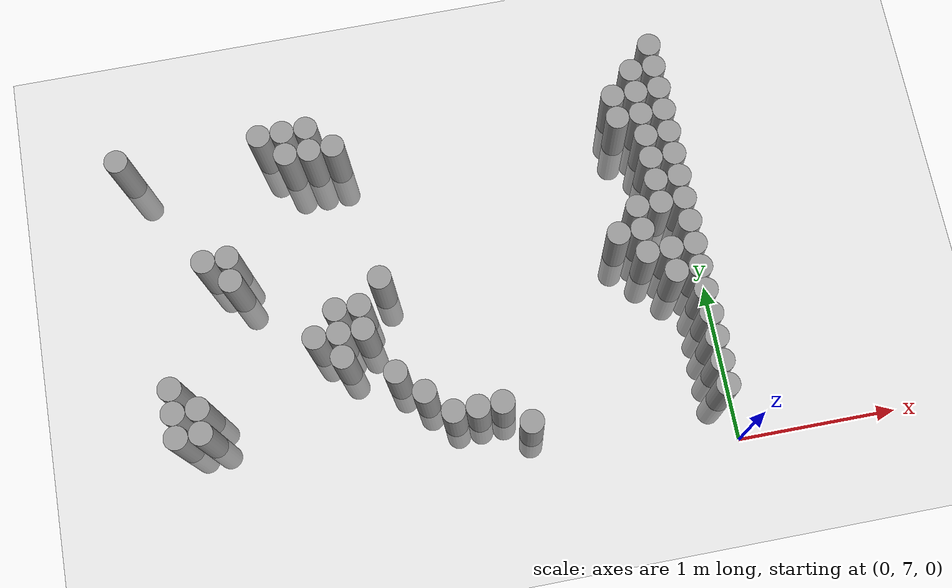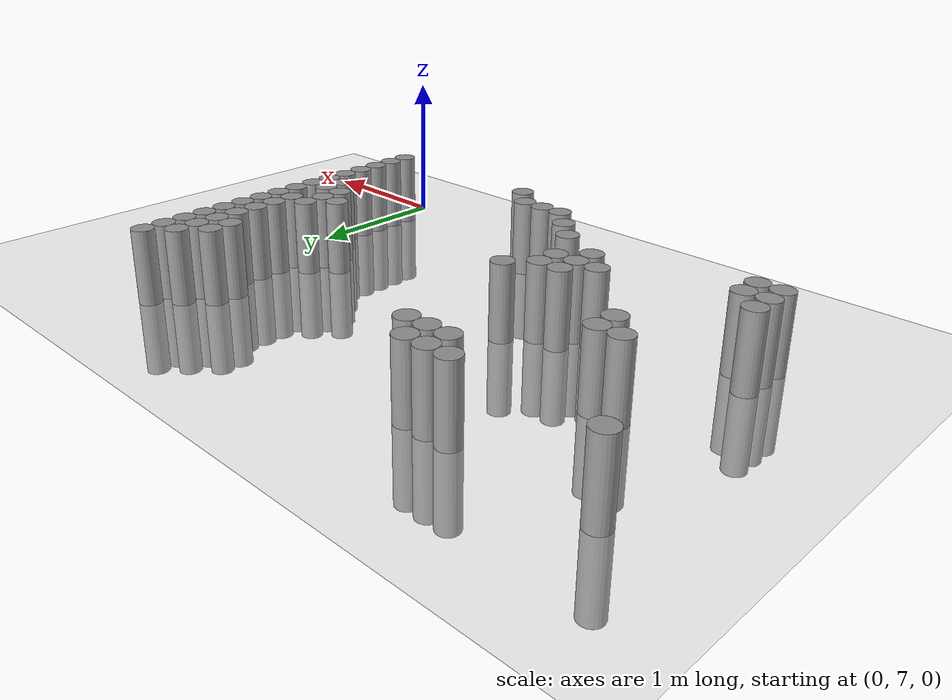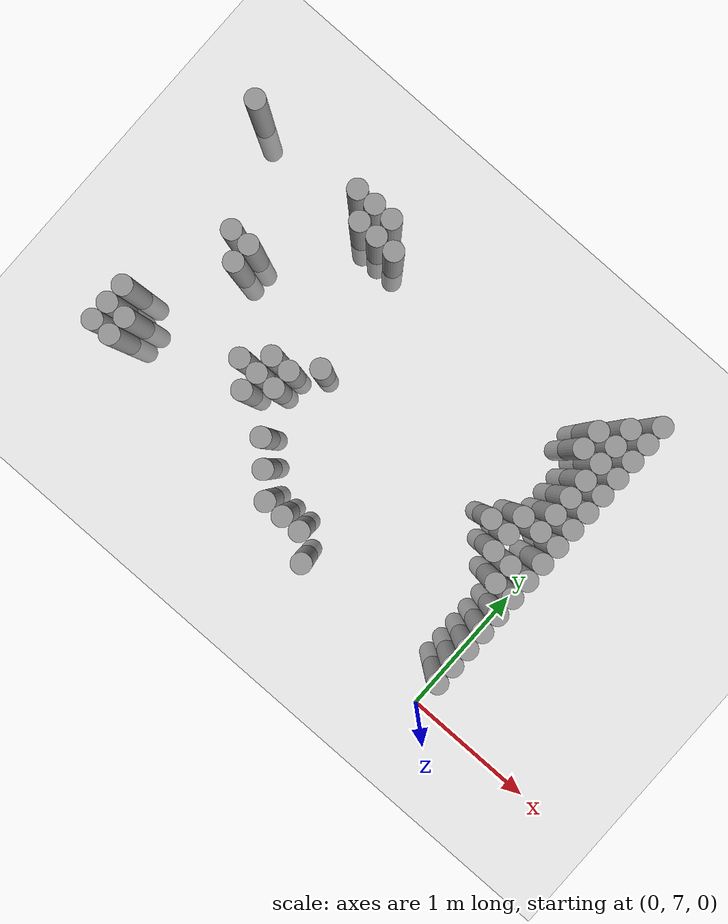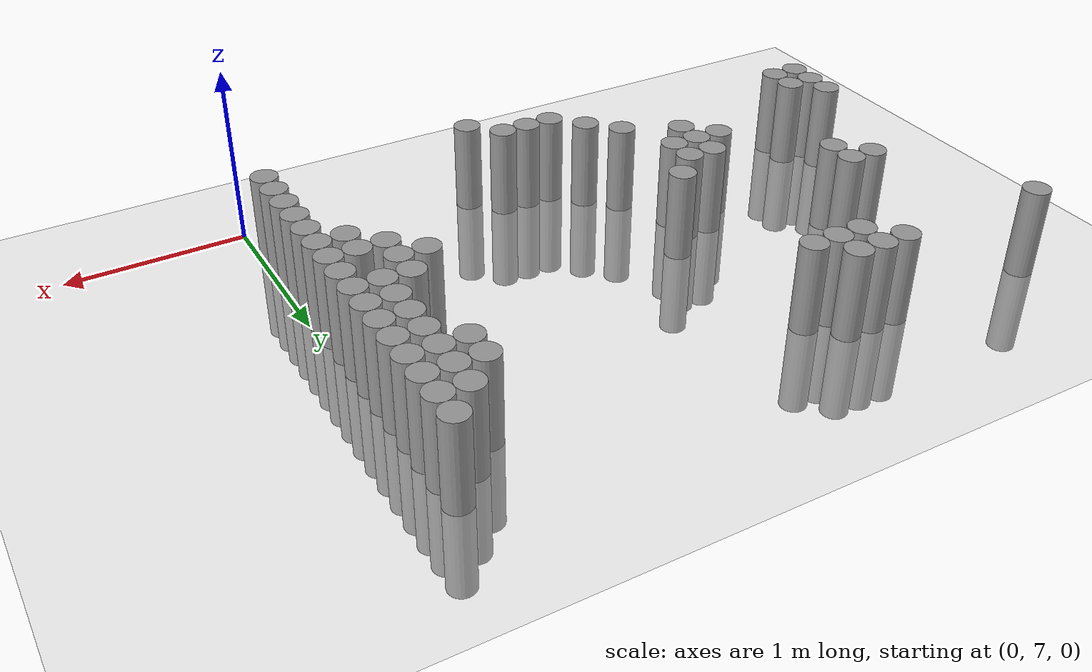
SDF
<sdf version="1.6">
 <world name="default">
  <model name="ground_plane">
   <static>1</static>
   <static>1</static>
   <link name="link">
    <collision name="collision">
     <geometry><plane><normal>0 0 1</normal><size>100 100</size></plane></geometry>
     <surface><friction><ode><mu>100</mu><mu2>50</mu2></ode></friction></surface>
    </collision>
    <visual name="visual">
     <cast_shadows>0</cast_shadows>
     <geometry><plane><normal>0 0 1</normal><size>100 100</size></plane></geometry>
     <material>
      <script><uri>file://media/materials/scripts/gazebo.material</uri><name>Gazebo/Grey</name></script>
     </material>
    </visual>
   </link>
  </model>
  <model name="unit_cylinder_169">
   <static>1</static>
   <pose>-3.525000 9.375000 0.000000 0.000000 0.000000 0.000000</pose>
   <link name="link">
    <inertial>
     <mass>1</mass>
     <inertia><ixx>0.145833</ixx><ixy>0</ixy><ixz>0</ixz><iyy>0.145833</iyy><iyz>0</iyz><izz>0.125</izz></inertia>
    </inertial>
    <collision name="collision">
     <geometry><cylinder><radius>0.075000</radius><length>1</length></cylinder></geometry>
    </collision>
    <visual name="visual">
     <geometry><cylinder><radius>0.075000</radius><length>1</length></cylinder></geometry>
     <material>
      <script><name>Gazebo/Grey</name><uri>file://media/materials/scripts/gazebo.material</uri></script>
     </material>
    </visual>
   </link>
  </model>
  <model name="unit_cylinder_176">
   <static>1</static>
   <pose>-3.375000 7.575000 0.000000 0.000000 0.000000 0.000000</pose>
   <link name="link">
    <inertial>
     <mass>1</mass>
     <inertia><ixx>0.145833</ixx><ixy>0</ixy><ixz>0</ixz><iyy>0.145833</iyy><iyz>0</iyz><izz>0.125</izz></inertia>
    </inertial>
    <collision name="collision">
     <geometry><cylinder><radius>0.075000</radius><length>1</length></cylinder></geometry>
    </collision>
    <visual name="visual">
     <geometry><cylinder><radius>0.075000</radius><length>1</length></cylinder></geometry>
     <material>
      <script><name>Gazebo/Grey</name><uri>file://media/materials/scripts/gazebo.material</uri></script>
     </material>
    </visual>
   </link>
  </model>
  <model name="unit_cylinder_177">
   <static>1</static>
   <pose>-3.375000 7.725000 0.000000 0.000000 0.000000 0.000000</pose>
   <link name="link">
    <inertial>
     <mass>1</mass>
     <inertia><ixx>0.145833</ixx><ixy>0</ixy><ixz>0</ixz><iyy>0.145833</iyy><iyz>0</iyz><izz>0.125</izz></inertia>
    </inertial>
    <collision name="collision">
     <geometry><cylinder><radius>0.075000</radius><length>1</length></cylinder></geometry>
    </collision>
    <visual name="visual">
     <geometry><cylinder><radius>0.075000</radius><length>1</length></cylinder></geometry>
     <material>
      <script><name>Gazebo/Grey</name><uri>file://media/materials/scripts/gazebo.material</uri></script>
     </material>
    </visual>
   </link>
  </model>
  <model name="unit_cylinder_178">
   <static>1</static>
   <pose>-3.375000 7.875000 0.000000 0.000000 0.000000 0.000000</pose>
   <link name="link">
    <inertial>
     <mass>1</mass>
     <inertia><ixx>0.145833</ixx><ixy>0</ixy><ixz>0</ixz><iyy>0.145833</iyy><iyz>0</iyz><izz>0.125</izz></inertia>
    </inertial>
    <collision name="collision">
     <geometry><cylinder><radius>0.075000</radius><length>1</length></cylinder></geometry>
    </collision>
    <visual name="visual">
     <geometry><cylinder><radius>0.075000</radius><length>1</length></cylinder></geometry>
     <material>
      <script><name>Gazebo/Grey</name><uri>file://media/materials/scripts/gazebo.material</uri></script>
     </material>
    </visual>
   </link>
  </model>
  <model name="unit_cylinder_183">
   <static>1</static>
   <pose>-3.225000 7.575000 0.000000 0.000000 0.000000 0.000000</pose>
   <link name="link">
    <inertial>
     <mass>1</mass>
     <inertia><ixx>0.145833</ixx><ixy>0</ixy><ixz>0</ixz><iyy>0.145833</iyy><iyz>0</iyz><izz>0.125</izz></inertia>
    </inertial>
    <collision name="collision">
     <geometry><cylinder><radius>0.075000</radius><length>1</length></cylinder></geometry>
    </collision>
    <visual name="visual">
     <geometry><cylinder><radius>0.075000</radius><length>1</length></cylinder></geometry>
     <material>
      <script><name>Gazebo/Grey</name><uri>file://media/materials/scripts/gazebo.material</uri></script>
     </material>
    </visual>
   </link>
  </model>
  <model name="unit_cylinder_184">
   <static>1</static>
   <pose>-3.225000 7.725000 0.000000 0.000000 0.000000 0.000000</pose>
   <link name="link">
    <inertial>
     <mass>1</mass>
     <inertia><ixx>0.145833</ixx><ixy>0</ixy><ixz>0</ixz><iyy>0.145833</iyy><iyz>0</iyz><izz>0.125</izz></inertia>
    </inertial>
    <collision name="collision">
     <geometry><cylinder><radius>0.075000</radius><length>1</length></cylinder></geometry>
    </collision>
    <visual name="visual">
     <geometry><cylinder><radius>0.075000</radius><length>1</length></cylinder></geometry>
     <material>
      <script><name>Gazebo/Grey</name><uri>file://media/materials/scripts/gazebo.material</uri></script>
     </material>
    </visual>
   </link>
  </model>
  <model name="unit_cylinder_186">
   <static>1</static>
   <pose>-3.075000 8.625000 0.000000 0.000000 0.000000 0.000000</pose>
   <link name="link">
    <inertial>
     <mass>1</mass>
     <inertia><ixx>0.145833</ixx><ixy>0</ixy><ixz>0</ixz><iyy>0.145833</iyy><iyz>0</iyz><izz>0.125</izz></inertia>
    </inertial>
    <collision name="collision">
     <geometry><cylinder><radius>0.075000</radius><length>1</length></cylinder></geometry>
    </collision>
    <visual name="visual">
     <geometry><cylinder><radius>0.075000</radius><length>1</length></cylinder></geometry>
     <material>
      <script><name>Gazebo/Grey</name><uri>file://media/materials/scripts/gazebo.material</uri></script>
     </material>
    </visual>
   </link>
  </model>
  <model name="unit_cylinder_187">
   <static>1</static>
   <pose>-2.925000 8.475000 0.000000 0.000000 0.000000 0.000000</pose>
   <link name="link">
    <inertial>
     <mass>1</mass>
     <inertia><ixx>0.145833</ixx><ixy>0</ixy><ixz>0</ixz><iyy>0.145833</iyy><iyz>0</iyz><izz>0.125</izz></inertia>
    </inertial>
    <collision name="collision">
     <geometry><cylinder><radius>0.075000</radius><length>1</length></cylinder></geometry>
    </collision>
    <visual name="visual">
     <geometry><cylinder><radius>0.075000</radius><length>1</length></cylinder></geometry>
     <material>
      <script><name>Gazebo/Grey</name><uri>file://media/materials/scripts/gazebo.material</uri></script>
     </material>
    </visual>
   </link>
  </model>
  <model name="unit_cylinder_188">
   <static>1</static>
   <pose>-2.925000 8.625000 0.000000 0.000000 0.000000 0.000000</pose>
   <link name="link">
    <inertial>
     <mass>1</mass>
     <inertia><ixx>0.145833</ixx><ixy>0</ixy><ixz>0</ixz><iyy>0.145833</iyy><iyz>0</iyz><izz>0.125</izz></inertia>
    </inertial>
    <collision name="collision">
     <geometry><cylinder><radius>0.075000</radius><length>1</length></cylinder></geometry>
    </collision>
    <visual name="visual">
     <geometry><cylinder><radius>0.075000</radius><length>1</length></cylinder></geometry>
     <material>
      <script><name>Gazebo/Grey</name><uri>file://media/materials/scripts/gazebo.material</uri></script>
     </material>
    </visual>
   </link>
  </model>
  <model name="unit_cylinder_189">
   <static>1</static>
   <pose>-2.625000 9.375000 0.000000 0.000000 0.000000 0.000000</pose>
   <link name="link">
    <inertial>
     <mass>1</mass>
     <inertia><ixx>0.145833</ixx><ixy>0</ixy><ixz>0</ixz><iyy>0.145833</iyy><iyz>0</iyz><izz>0.125</izz></inertia>
    </inertial>
    <collision name="collision">
     <geometry><cylinder><radius>0.075000</radius><length>1</length></cylinder></geometry>
    </collision>
    <visual name="visual">
     <geometry><cylinder><radius>0.075000</radius><length>1</length></cylinder></geometry>
     <material>
      <script><name>Gazebo/Grey</name><uri>file://media/materials/scripts/gazebo.material</uri></script>
     </material>
    </visual>
   </link>
  </model>
  <model name="unit_cylinder_192">
   <static>1</static>
   <pose>-2.475000 8.025000 0.000000 0.000000 0.000000 0.000000</pose>
   <link name="link">
    <inertial>
     <mass>1</mass>
     <inertia><ixx>0.145833</ixx><ixy>0</ixy><ixz>0</ixz><iyy>0.145833</iyy><iyz>0</iyz><izz>0.125</izz></inertia>
    </inertial>
    <collision name="collision">
     <geometry><cylinder><radius>0.075000</radius><length>1</length></cylinder></geometry>
    </collision>
    <visual name="visual">
     <geometry><cylinder><radius>0.075000</radius><length>1</length></cylinder></geometry>
     <material>
      <script><name>Gazebo/Grey</name><uri>file://media/materials/scripts/gazebo.material</uri></script>
     </material>
    </visual>
   </link>
  </model>
  <model name="unit_cylinder_193">
   <static>1</static>
   <pose>-2.475000 9.225000 0.000000 0.000000 0.000000 0.000000</pose>
   <link name="link">
    <inertial>
     <mass>1</mass>
     <inertia><ixx>0.145833</ixx><ixy>0</ixy><ixz>0</ixz><iyy>0.145833</iyy><iyz>0</iyz><izz>0.125</izz></inertia>
    </inertial>
    <collision name="collision">
     <geometry><cylinder><radius>0.075000</radius><length>1</length></cylinder></geometry>
    </collision>
    <visual name="visual">
     <geometry><cylinder><radius>0.075000</radius><length>1</length></cylinder></geometry>
     <material>
      <script><name>Gazebo/Grey</name><uri>file://media/materials/scripts/gazebo.material</uri></script>
     </material>
    </visual>
   </link>
  </model>
  <model name="unit_cylinder_194">
   <static>1</static>
   <pose>-2.475000 9.375000 0.000000 0.000000 0.000000 0.000000</pose>
   <link name="link">
    <inertial>
     <mass>1</mass>
     <inertia><ixx>0.145833</ixx><ixy>0</ixy><ixz>0</ixz><iyy>0.145833</iyy><iyz>0</iyz><izz>0.125</izz></inertia>
    </inertial>
    <collision name="collision">
     <geometry><cylinder><radius>0.075000</radius><length>1</length></cylinder></geometry>
    </collision>
    <visual name="visual">
     <geometry><cylinder><radius>0.075000</radius><length>1</length></cylinder></geometry>
     <material>
      <script><name>Gazebo/Grey</name><uri>file://media/materials/scripts/gazebo.material</uri></script>
     </material>
    </visual>
   </link>
  </model>
  <model name="unit_cylinder_199">
   <static>1</static>
   <pose>-2.325000 7.875000 0.000000 0.000000 0.000000 0.000000</pose>
   <link name="link">
    <inertial>
     <mass>1</mass>
     <inertia><ixx>0.145833</ixx><ixy>0</ixy><ixz>0</ixz><iyy>0.145833</iyy><iyz>0</iyz><izz>0.125</izz></inertia>
    </inertial>
    <collision name="collision">
     <geometry><cylinder><radius>0.075000</radius><length>1</length></cylinder></geometry>
    </collision>
    <visual name="visual">
     <geometry><cylinder><radius>0.075000</radius><length>1</length></cylinder></geometry>
     <material>
      <script><name>Gazebo/Grey</name><uri>file://media/materials/scripts/gazebo.material</uri></script>
     </material>
    </visual>
   </link>
  </model>
  <model name="unit_cylinder_200">
   <static>1</static>
   <pose>-2.325000 8.025000 0.000000 0.000000 0.000000 0.000000</pose>
   <link name="link">
    <inertial>
     <mass>1</mass>
     <inertia><ixx>0.145833</ixx><ixy>0</ixy><ixz>0</ixz><iyy>0.145833</iyy><iyz>0</iyz><izz>0.125</izz></inertia>
    </inertial>
    <collision name="collision">
     <geometry><cylinder><radius>0.075000</radius><length>1</length></cylinder></geometry>
    </collision>
    <visual name="visual">
     <geometry><cylinder><radius>0.075000</radius><length>1</length></cylinder></geometry>
     <material>
      <script><name>Gazebo/Grey</name><uri>file://media/materials/scripts/gazebo.material</uri></script>
     </material>
    </visual>
   </link>
  </model>
  <model name="unit_cylinder_201">
   <static>1</static>
   <pose>-2.325000 8.175000 0.000000 0.000000 0.000000 0.000000</pose>
   <link name="link">
    <inertial>
     <mass>1</mass>
     <inertia><ixx>0.145833</ixx><ixy>0</ixy><ixz>0</ixz><iyy>0.145833</iyy><iyz>0</iyz><izz>0.125</izz></inertia>
    </inertial>
    <collision name="collision">
     <geometry><cylinder><radius>0.075000</radius><length>1</length></cylinder></geometry>
    </collision>
    <visual name="visual">
     <geometry><cylinder><radius>0.075000</radius><length>1</length></cylinder></geometry>
     <material>
      <script><name>Gazebo/Grey</name><uri>file://media/materials/scripts/gazebo.material</uri></script>
     </material>
    </visual>
   </link>
  </model>
  <model name="unit_cylinder_202">
   <static>1</static>
   <pose>-2.325000 9.225000 0.000000 0.000000 0.000000 0.000000</pose>
   <link name="link">
    <inertial>
     <mass>1</mass>
     <inertia><ixx>0.145833</ixx><ixy>0</ixy><ixz>0</ixz><iyy>0.145833</iyy><iyz>0</iyz><izz>0.125</izz></inertia>
    </inertial>
    <collision name="collision">
     <geometry><cylinder><radius>0.075000</radius><length>1</length></cylinder></geometry>
    </collision>
    <visual name="visual">
     <geometry><cylinder><radius>0.075000</radius><length>1</length></cylinder></geometry>
     <material>
      <script><name>Gazebo/Grey</name><uri>file://media/materials/scripts/gazebo.material</uri></script>
     </material>
    </visual>
   </link>
  </model>
  <model name="unit_cylinder_203">
   <static>1</static>
   <pose>-2.325000 9.375000 0.000000 0.000000 0.000000 0.000000</pose>
   <link name="link">
    <inertial>
     <mass>1</mass>
     <inertia><ixx>0.145833</ixx><ixy>0</ixy><ixz>0</ixz><iyy>0.145833</iyy><iyz>0</iyz><izz>0.125</izz></inertia>
    </inertial>
    <collision name="collision">
     <geometry><cylinder><radius>0.075000</radius><length>1</length></cylinder></geometry>
    </collision>
    <visual name="visual">
     <geometry><cylinder><radius>0.075000</radius><length>1</length></cylinder></geometry>
     <material>
      <script><name>Gazebo/Grey</name><uri>file://media/materials/scripts/gazebo.material</uri></script>
     </material>
    </visual>
   </link>
  </model>
  <model name="unit_cylinder_209">
   <static>1</static>
   <pose>-2.175000 8.025000 0.000000 0.000000 0.000000 0.000000</pose>
   <link name="link">
    <inertial>
     <mass>1</mass>
     <inertia><ixx>0.145833</ixx><ixy>0</ixy><ixz>0</ixz><iyy>0.145833</iyy><iyz>0</iyz><izz>0.125</izz></inertia>
    </inertial>
    <collision name="collision">
     <geometry><cylinder><radius>0.075000</radius><length>1</length></cylinder></geometry>
    </collision>
    <visual name="visual">
     <geometry><cylinder><radius>0.075000</radius><length>1</length></cylinder></geometry>
     <material>
      <script><name>Gazebo/Grey</name><uri>file://media/materials/scripts/gazebo.material</uri></script>
     </material>
    </visual>
   </link>
  </model>
  <model name="unit_cylinder_210">
   <static>1</static>
   <pose>-2.175000 8.175000 0.000000 0.000000 0.000000 0.000000</pose>
   <link name="link">
    <inertial>
     <mass>1</mass>
     <inertia><ixx>0.145833</ixx><ixy>0</ixy><ixz>0</ixz><iyy>0.145833</iyy><iyz>0</iyz><izz>0.125</izz></inertia>
    </inertial>
    <collision name="collision">
     <geometry><cylinder><radius>0.075000</radius><length>1</length></cylinder></geometry>
    </collision>
    <visual name="visual">
     <geometry><cylinder><radius>0.075000</radius><length>1</length></cylinder></geometry>
     <material>
      <script><name>Gazebo/Grey</name><uri>file://media/materials/scripts/gazebo.material</uri></script>
     </material>
    </visual>
   </link>
  </model>
  <model name="unit_cylinder_211">
   <static>1</static>
   <pose>-2.175000 9.225000 0.000000 0.000000 0.000000 0.000000</pose>
   <link name="link">
    <inertial>
     <mass>1</mass>
     <inertia><ixx>0.145833</ixx><ixy>0</ixy><ixz>0</ixz><iyy>0.145833</iyy><iyz>0</iyz><izz>0.125</izz></inertia>
    </inertial>
    <collision name="collision">
     <geometry><cylinder><radius>0.075000</radius><length>1</length></cylinder></geometry>
    </collision>
    <visual name="visual">
     <geometry><cylinder><radius>0.075000</radius><length>1</length></cylinder></geometry>
     <material>
      <script><name>Gazebo/Grey</name><uri>file://media/materials/scripts/gazebo.material</uri></script>
     </material>
    </visual>
   </link>
  </model>
  <model name="unit_cylinder_219">
   <static>1</static>
   <pose>-2.025000 7.725000 0.000000 0.000000 0.000000 0.000000</pose>
   <link name="link">
    <inertial>
     <mass>1</mass>
     <inertia><ixx>0.145833</ixx><ixy>0</ixy><ixz>0</ixz><iyy>0.145833</iyy><iyz>0</iyz><izz>0.125</izz></inertia>
    </inertial>
    <collision name="collision">
     <geometry><cylinder><radius>0.075000</radius><length>1</length></cylinder></geometry>
    </collision>
    <visual name="visual">
     <geometry><cylinder><radius>0.075000</radius><length>1</length></cylinder></geometry>
     <material>
      <script><name>Gazebo/Grey</name><uri>file://media/materials/scripts/gazebo.material</uri></script>
     </material>
    </visual>
   </link>
  </model>
  <model name="unit_cylinder_220">
   <static>1</static>
   <pose>-2.025000 8.325000 0.000000 0.000000 0.000000 0.000000</pose>
   <link name="link">
    <inertial>
     <mass>1</mass>
     <inertia><ixx>0.145833</ixx><ixy>0</ixy><ixz>0</ixz><iyy>0.145833</iyy><iyz>0</iyz><izz>0.125</izz></inertia>
    </inertial>
    <collision name="collision">
     <geometry><cylinder><radius>0.075000</radius><length>1</length></cylinder></geometry>
    </collision>
    <visual name="visual">
     <geometry><cylinder><radius>0.075000</radius><length>1</length></cylinder></geometry>
     <material>
      <script><name>Gazebo/Grey</name><uri>file://media/materials/scripts/gazebo.material</uri></script>
     </material>
    </visual>
   </link>
  </model>
  <model name="unit_cylinder_225">
   <static>1</static>
   <pose>-1.875000 7.575000 0.000000 0.000000 0.000000 0.000000</pose>
   <link name="link">
    <inertial>
     <mass>1</mass>
     <inertia><ixx>0.145833</ixx><ixy>0</ixy><ixz>0</ixz><iyy>0.145833</iyy><iyz>0</iyz><izz>0.125</izz></inertia>
    </inertial>
    <collision name="collision">
     <geometry><cylinder><radius>0.075000</radius><length>1</length></cylinder></geometry>
    </collision>
    <visual name="visual">
     <geometry><cylinder><radius>0.075000</radius><length>1</length></cylinder></geometry>
     <material>
      <script><name>Gazebo/Grey</name><uri>file://media/materials/scripts/gazebo.material</uri></script>
     </material>
    </visual>
   </link>
  </model>
  <model name="unit_cylinder_228">
   <static>1</static>
   <pose>-1.725000 7.425000 0.000000 0.000000 0.000000 0.000000</pose>
   <link name="link">
    <inertial>
     <mass>1</mass>
     <inertia><ixx>0.145833</ixx><ixy>0</ixy><ixz>0</ixz><iyy>0.145833</iyy><iyz>0</iyz><izz>0.125</izz></inertia>
    </inertial>
    <collision name="collision">
     <geometry><cylinder><radius>0.075000</radius><length>1</length></cylinder></geometry>
    </collision>
    <visual name="visual">
     <geometry><cylinder><radius>0.075000</radius><length>1</length></cylinder></geometry>
     <material>
      <script><name>Gazebo/Grey</name><uri>file://media/materials/scripts/gazebo.material</uri></script>
     </material>
    </visual>
   </link>
  </model>
  <model name="unit_cylinder_233">
   <static>1</static>
   <pose>-1.575000 7.425000 0.000000 0.000000 0.000000 0.000000</pose>
   <link name="link">
    <inertial>
     <mass>1</mass>
     <inertia><ixx>0.145833</ixx><ixy>0</ixy><ixz>0</ixz><iyy>0.145833</iyy><iyz>0</iyz><izz>0.125</izz></inertia>
    </inertial>
    <collision name="collision">
     <geometry><cylinder><radius>0.075000</radius><length>1</length></cylinder></geometry>
    </collision>
    <visual name="visual">
     <geometry><cylinder><radius>0.075000</radius><length>1</length></cylinder></geometry>
     <material>
      <script><name>Gazebo/Grey</name><uri>file://media/materials/scripts/gazebo.material</uri></script>
     </material>
    </visual>
   </link>
  </model>
  <model name="unit_cylinder_236">
   <static>1</static>
   <pose>-1.425000 7.425000 0.000000 0.000000 0.000000 0.000000</pose>
   <link name="link">
    <inertial>
     <mass>1</mass>
     <inertia><ixx>0.145833</ixx><ixy>0</ixy><ixz>0</ixz><iyy>0.145833</iyy><iyz>0</iyz><izz>0.125</izz></inertia>
    </inertial>
    <collision name="collision">
     <geometry><cylinder><radius>0.075000</radius><length>1</length></cylinder></geometry>
    </collision>
    <visual name="visual">
     <geometry><cylinder><radius>0.075000</radius><length>1</length></cylinder></geometry>
     <material>
      <script><name>Gazebo/Grey</name><uri>file://media/materials/scripts/gazebo.material</uri></script>
     </material>
    </visual>
   </link>
  </model>
  <model name="unit_cylinder_237">
   <static>1</static>
   <pose>-1.275000 7.275000 0.000000 0.000000 0.000000 0.000000</pose>
   <link name="link">
    <inertial>
     <mass>1</mass>
     <inertia><ixx>0.145833</ixx><ixy>0</ixy><ixz>0</ixz><iyy>0.145833</iyy><iyz>0</iyz><izz>0.125</izz></inertia>
    </inertial>
    <collision name="collision">
     <geometry><cylinder><radius>0.075000</radius><length>1</length></cylinder></geometry>
    </collision>
    <visual name="visual">
     <geometry><cylinder><radius>0.075000</radius><length>1</length></cylinder></geometry>
     <material>
      <script><name>Gazebo/Grey</name><uri>file://media/materials/scripts/gazebo.material</uri></script>
     </material>
    </visual>
   </link>
  </model>
  <model name="unit_cylinder_242">
   <static>1</static>
   <pose>-0.525000 8.325000 0.000000 0.000000 0.000000 0.000000</pose>
   <link name="link">
    <inertial>
     <mass>1</mass>
     <inertia><ixx>0.145833</ixx><ixy>0</ixy><ixz>0</ixz><iyy>0.145833</iyy><iyz>0</iyz><izz>0.125</izz></inertia>
    </inertial>
    <collision name="collision">
     <geometry><cylinder><radius>0.075000</radius><length>1</length></cylinder></geometry>
    </collision>
    <visual name="visual">
     <geometry><cylinder><radius>0.075000</radius><length>1</length></cylinder></geometry>
     <material>
      <script><name>Gazebo/Grey</name><uri>file://media/materials/scripts/gazebo.material</uri></script>
     </material>
    </visual>
   </link>
  </model>
  <model name="unit_cylinder_244">
   <static>1</static>
   <pose>-0.375000 8.175000 0.000000 0.000000 0.000000 0.000000</pose>
   <link name="link">
    <inertial>
     <mass>1</mass>
     <inertia><ixx>0.145833</ixx><ixy>0</ixy><ixz>0</ixz><iyy>0.145833</iyy><iyz>0</iyz><izz>0.125</izz></inertia>
    </inertial>
    <collision name="collision">
     <geometry><cylinder><radius>0.075000</radius><length>1</length></cylinder></geometry>
    </collision>
    <visual name="visual">
     <geometry><cylinder><radius>0.075000</radius><length>1</length></cylinder></geometry>
     <material>
      <script><name>Gazebo/Grey</name><uri>file://media/materials/scripts/gazebo.material</uri></script>
     </material>
    </visual>
   </link>
  </model>
  <model name="unit_cylinder_245">
   <static>1</static>
   <pose>-0.375000 8.325000 0.000000 0.000000 0.000000 0.000000</pose>
   <link name="link">
    <inertial>
     <mass>1</mass>
     <inertia><ixx>0.145833</ixx><ixy>0</ixy><ixz>0</ixz><iyy>0.145833</iyy><iyz>0</iyz><izz>0.125</izz></inertia>
    </inertial>
    <collision name="collision">
     <geometry><cylinder><radius>0.075000</radius><length>1</length></cylinder></geometry>
    </collision>
    <visual name="visual">
     <geometry><cylinder><radius>0.075000</radius><length>1</length></cylinder></geometry>
     <material>
      <script><name>Gazebo/Grey</name><uri>file://media/materials/scripts/gazebo.material</uri></script>
     </material>
    </visual>
   </link>
  </model>
  <model name="unit_cylinder_246">
   <static>1</static>
   <pose>-0.375000 8.475000 0.000000 0.000000 0.000000 0.000000</pose>
   <link name="link">
    <inertial>
     <mass>1</mass>
     <inertia><ixx>0.145833</ixx><ixy>0</ixy><ixz>0</ixz><iyy>0.145833</iyy><iyz>0</iyz><izz>0.125</izz></inertia>
    </inertial>
    <collision name="collision">
     <geometry><cylinder><radius>0.075000</radius><length>1</length></cylinder></geometry>
    </collision>
    <visual name="visual">
     <geometry><cylinder><radius>0.075000</radius><length>1</length></cylinder></geometry>
     <material>
      <script><name>Gazebo/Grey</name><uri>file://media/materials/scripts/gazebo.material</uri></script>
     </material>
    </visual>
   </link>
  </model>
  <model name="unit_cylinder_247">
   <static>1</static>
   <pose>-0.375000 9.075000 0.000000 0.000000 0.000000 0.000000</pose>
   <link name="link">
    <inertial>
     <mass>1</mass>
     <inertia><ixx>0.145833</ixx><ixy>0</ixy><ixz>0</ixz><iyy>0.145833</iyy><iyz>0</iyz><izz>0.125</izz></inertia>
    </inertial>
    <collision name="collision">
     <geometry><cylinder><radius>0.075000</radius><length>1</length></cylinder></geometry>
    </collision>
    <visual name="visual">
     <geometry><cylinder><radius>0.075000</radius><length>1</length></cylinder></geometry>
     <material>
      <script><name>Gazebo/Grey</name><uri>file://media/materials/scripts/gazebo.material</uri></script>
     </material>
    </visual>
   </link>
  </model>
  <model name="unit_cylinder_248">
   <static>1</static>
   <pose>-0.375000 9.225000 0.000000 0.000000 0.000000 0.000000</pose>
   <link name="link">
    <inertial>
     <mass>1</mass>
     <inertia><ixx>0.145833</ixx><ixy>0</ixy><ixz>0</ixz><iyy>0.145833</iyy><iyz>0</iyz><izz>0.125</izz></inertia>
    </inertial>
    <collision name="collision">
     <geometry><cylinder><radius>0.075000</radius><length>1</length></cylinder></geometry>
    </collision>
    <visual name="visual">
     <geometry><cylinder><radius>0.075000</radius><length>1</length></cylinder></geometry>
     <material>
      <script><name>Gazebo/Grey</name><uri>file://media/materials/scripts/gazebo.material</uri></script>
     </material>
    </visual>
   </link>
  </model>
  <model name="unit_cylinder_255">
   <static>1</static>
   <pose>-0.225000 8.025000 0.000000 0.000000 0.000000 0.000000</pose>
   <link name="link">
    <inertial>
     <mass>1</mass>
     <inertia><ixx>0.145833</ixx><ixy>0</ixy><ixz>0</ixz><iyy>0.145833</iyy><iyz>0</iyz><izz>0.125</izz></inertia>
    </inertial>
    <collision name="collision">
     <geometry><cylinder><radius>0.075000</radius><length>1</length></cylinder></geometry>
    </collision>
    <visual name="visual">
     <geometry><cylinder><radius>0.075000</radius><length>1</length></cylinder></geometry>
     <material>
      <script><name>Gazebo/Grey</name><uri>file://media/materials/scripts/gazebo.material</uri></script>
     </material>
    </visual>
   </link>
  </model>
  <model name="unit_cylinder_256">
   <static>1</static>
   <pose>-0.225000 8.175000 0.000000 0.000000 0.000000 0.000000</pose>
   <link name="link">
    <inertial>
     <mass>1</mass>
     <inertia><ixx>0.145833</ixx><ixy>0</ixy><ixz>0</ixz><iyy>0.145833</iyy><iyz>0</iyz><izz>0.125</izz></inertia>
    </inertial>
    <collision name="collision">
     <geometry><cylinder><radius>0.075000</radius><length>1</length></cylinder></geometry>
    </collision>
    <visual name="visual">
     <geometry><cylinder><radius>0.075000</radius><length>1</length></cylinder></geometry>
     <material>
      <script><name>Gazebo/Grey</name><uri>file://media/materials/scripts/gazebo.material</uri></script>
     </material>
    </visual>
   </link>
  </model>
  <model name="unit_cylinder_257">
   <static>1</static>
   <pose>-0.225000 8.475000 0.000000 0.000000 0.000000 0.000000</pose>
   <link name="link">
    <inertial>
     <mass>1</mass>
     <inertia><ixx>0.145833</ixx><ixy>0</ixy><ixz>0</ixz><iyy>0.145833</iyy><iyz>0</iyz><izz>0.125</izz></inertia>
    </inertial>
    <collision name="collision">
     <geometry><cylinder><radius>0.075000</radius><length>1</length></cylinder></geometry>
    </collision>
    <visual name="visual">
     <geometry><cylinder><radius>0.075000</radius><length>1</length></cylinder></geometry>
     <material>
      <script><name>Gazebo/Grey</name><uri>file://media/materials/scripts/gazebo.material</uri></script>
     </material>
    </visual>
   </link>
  </model>
  <model name="unit_cylinder_258">
   <static>1</static>
   <pose>-0.225000 8.625000 0.000000 0.000000 0.000000 0.000000</pose>
   <link name="link">
    <inertial>
     <mass>1</mass>
     <inertia><ixx>0.145833</ixx><ixy>0</ixy><ixz>0</ixz><iyy>0.145833</iyy><iyz>0</iyz><izz>0.125</izz></inertia>
    </inertial>
    <collision name="collision">
     <geometry><cylinder><radius>0.075000</radius><length>1</length></cylinder></geometry>
    </collision>
    <visual name="visual">
     <geometry><cylinder><radius>0.075000</radius><length>1</length></cylinder></geometry>
     <material>
      <script><name>Gazebo/Grey</name><uri>file://media/materials/scripts/gazebo.material</uri></script>
     </material>
    </visual>
   </link>
  </model>
  <model name="unit_cylinder_259">
   <static>1</static>
   <pose>-0.225000 8.775000 0.000000 0.000000 0.000000 0.000000</pose>
   <link name="link">
    <inertial>
     <mass>1</mass>
     <inertia><ixx>0.145833</ixx><ixy>0</ixy><ixz>0</ixz><iyy>0.145833</iyy><iyz>0</iyz><izz>0.125</izz></inertia>
    </inertial>
    <collision name="collision">
     <geometry><cylinder><radius>0.075000</radius><length>1</length></cylinder></geometry>
    </collision>
    <visual name="visual">
     <geometry><cylinder><radius>0.075000</radius><length>1</length></cylinder></geometry>
     <material>
      <script><name>Gazebo/Grey</name><uri>file://media/materials/scripts/gazebo.material</uri></script>
     </material>
    </visual>
   </link>
  </model>
  <model name="unit_cylinder_260">
   <static>1</static>
   <pose>-0.225000 8.925000 0.000000 0.000000 0.000000 0.000000</pose>
   <link name="link">
    <inertial>
     <mass>1</mass>
     <inertia><ixx>0.145833</ixx><ixy>0</ixy><ixz>0</ixz><iyy>0.145833</iyy><iyz>0</iyz><izz>0.125</izz></inertia>
    </inertial>
    <collision name="collision">
     <geometry><cylinder><radius>0.075000</radius><length>1</length></cylinder></geometry>
    </collision>
    <visual name="visual">
     <geometry><cylinder><radius>0.075000</radius><length>1</length></cylinder></geometry>
     <material>
      <script><name>Gazebo/Grey</name><uri>file://media/materials/scripts/gazebo.material</uri></script>
     </material>
    </visual>
   </link>
  </model>
  <model name="unit_cylinder_261">
   <static>1</static>
   <pose>-0.225000 9.075000 0.000000 0.000000 0.000000 0.000000</pose>
   <link name="link">
    <inertial>
     <mass>1</mass>
     <inertia><ixx>0.145833</ixx><ixy>0</ixy><ixz>0</ixz><iyy>0.145833</iyy><iyz>0</iyz><izz>0.125</izz></inertia>
    </inertial>
    <collision name="collision">
     <geometry><cylinder><radius>0.075000</radius><length>1</length></cylinder></geometry>
    </collision>
    <visual name="visual">
     <geometry><cylinder><radius>0.075000</radius><length>1</length></cylinder></geometry>
     <material>
      <script><name>Gazebo/Grey</name><uri>file://media/materials/scripts/gazebo.material</uri></script>
     </material>
    </visual>
   </link>
  </model>
  <model name="unit_cylinder_262">
   <static>1</static>
   <pose>-0.225000 9.225000 0.000000 0.000000 0.000000 0.000000</pose>
   <link name="link">
    <inertial>
     <mass>1</mass>
     <inertia><ixx>0.145833</ixx><ixy>0</ixy><ixz>0</ixz><iyy>0.145833</iyy><iyz>0</iyz><izz>0.125</izz></inertia>
    </inertial>
    <collision name="collision">
     <geometry><cylinder><radius>0.075000</radius><length>1</length></cylinder></geometry>
    </collision>
    <visual name="visual">
     <geometry><cylinder><radius>0.075000</radius><length>1</length></cylinder></geometry>
     <material>
      <script><name>Gazebo/Grey</name><uri>file://media/materials/scripts/gazebo.material</uri></script>
     </material>
    </visual>
   </link>
  </model>
  <model name="unit_cylinder_263">
   <static>1</static>
   <pose>-0.225000 9.375000 0.000000 0.000000 0.000000 0.000000</pose>
   <link name="link">
    <inertial>
     <mass>1</mass>
     <inertia><ixx>0.145833</ixx><ixy>0</ixy><ixz>0</ixz><iyy>0.145833</iyy><iyz>0</iyz><izz>0.125</izz></inertia>
    </inertial>
    <collision name="collision">
     <geometry><cylinder><radius>0.075000</radius><length>1</length></cylinder></geometry>
    </collision>
    <visual name="visual">
     <geometry><cylinder><radius>0.075000</radius><length>1</length></cylinder></geometry>
     <material>
      <script><name>Gazebo/Grey</name><uri>file://media/materials/scripts/gazebo.material</uri></script>
     </material>
    </visual>
   </link>
  </model>
  <model name="unit_cylinder_278">
   <static>1</static>
   <pose>-0.075000 7.275000 0.000000 0.000000 0.000000 0.000000</pose>
   <link name="link">
    <inertial>
     <mass>1</mass>
     <inertia><ixx>0.145833</ixx><ixy>0</ixy><ixz>0</ixz><iyy>0.145833</iyy><iyz>0</iyz><izz>0.125</izz></inertia>
    </inertial>
    <collision name="collision">
     <geometry><cylinder><radius>0.075000</radius><length>1</length></cylinder></geometry>
    </collision>
    <visual name="visual">
     <geometry><cylinder><radius>0.075000</radius><length>1</length></cylinder></geometry>
     <material>
      <script><name>Gazebo/Grey</name><uri>file://media/materials/scripts/gazebo.material</uri></script>
     </material>
    </visual>
   </link>
  </model>
  <model name="unit_cylinder_279">
   <static>1</static>
   <pose>-0.075000 7.425000 0.000000 0.000000 0.000000 0.000000</pose>
   <link name="link">
    <inertial>
     <mass>1</mass>
     <inertia><ixx>0.145833</ixx><ixy>0</ixy><ixz>0</ixz><iyy>0.145833</iyy><iyz>0</iyz><izz>0.125</izz></inertia>
    </inertial>
    <collision name="collision">
     <geometry><cylinder><radius>0.075000</radius><length>1</length></cylinder></geometry>
    </collision>
    <visual name="visual">
     <geometry><cylinder><radius>0.075000</radius><length>1</length></cylinder></geometry>
     <material>
      <script><name>Gazebo/Grey</name><uri>file://media/materials/scripts/gazebo.material</uri></script>
     </material>
    </visual>
   </link>
  </model>
  <model name="unit_cylinder_280">
   <static>1</static>
   <pose>-0.075000 7.575000 0.000000 0.000000 0.000000 0.000000</pose>
   <link name="link">
    <inertial>
     <mass>1</mass>
     <inertia><ixx>0.145833</ixx><ixy>0</ixy><ixz>0</ixz><iyy>0.145833</iyy><iyz>0</iyz><izz>0.125</izz></inertia>
    </inertial>
    <collision name="collision">
     <geometry><cylinder><radius>0.075000</radius><length>1</length></cylinder></geometry>
    </collision>
    <visual name="visual">
     <geometry><cylinder><radius>0.075000</radius><length>1</length></cylinder></geometry>
     <material>
      <script><name>Gazebo/Grey</name><uri>file://media/materials/scripts/gazebo.material</uri></script>
     </material>
    </visual>
   </link>
  </model>
  <model name="unit_cylinder_281">
   <static>1</static>
   <pose>-0.075000 7.725000 0.000000 0.000000 0.000000 0.000000</pose>
   <link name="link">
    <inertial>
     <mass>1</mass>
     <inertia><ixx>0.145833</ixx><ixy>0</ixy><ixz>0</ixz><iyy>0.145833</iyy><iyz>0</iyz><izz>0.125</izz></inertia>
    </inertial>
    <collision name="collision">
     <geometry><cylinder><radius>0.075000</radius><length>1</length></cylinder></geometry>
    </collision>
    <visual name="visual">
     <geometry><cylinder><radius>0.075000</radius><length>1</length></cylinder></geometry>
     <material>
      <script><name>Gazebo/Grey</name><uri>file://media/materials/scripts/gazebo.material</uri></script>
     </material>
    </visual>
   </link>
  </model>
  <model name="unit_cylinder_282">
   <static>1</static>
   <pose>-0.075000 7.875000 0.000000 0.000000 0.000000 0.000000</pose>
   <link name="link">
    <inertial>
     <mass>1</mass>
     <inertia><ixx>0.145833</ixx><ixy>0</ixy><ixz>0</ixz><iyy>0.145833</iyy><iyz>0</iyz><izz>0.125</izz></inertia>
    </inertial>
    <collision name="collision">
     <geometry><cylinder><radius>0.075000</radius><length>1</length></cylinder></geometry>
    </collision>
    <visual name="visual">
     <geometry><cylinder><radius>0.075000</radius><length>1</length></cylinder></geometry>
     <material>
      <script><name>Gazebo/Grey</name><uri>file://media/materials/scripts/gazebo.material</uri></script>
     </material>
    </visual>
   </link>
  </model>
  <model name="unit_cylinder_283">
   <static>1</static>
   <pose>-0.075000 8.025000 0.000000 0.000000 0.000000 0.000000</pose>
   <link name="link">
    <inertial>
     <mass>1</mass>
     <inertia><ixx>0.145833</ixx><ixy>0</ixy><ixz>0</ixz><iyy>0.145833</iyy><iyz>0</iyz><izz>0.125</izz></inertia>
    </inertial>
    <collision name="collision">
     <geometry><cylinder><radius>0.075000</radius><length>1</length></cylinder></geometry>
    </collision>
    <visual name="visual">
     <geometry><cylinder><radius>0.075000</radius><length>1</length></cylinder></geometry>
     <material>
      <script><name>Gazebo/Grey</name><uri>file://media/materials/scripts/gazebo.material</uri></script>
     </material>
    </visual>
   </link>
  </model>
  <model name="unit_cylinder_284">
   <static>1</static>
   <pose>-0.075000 8.175000 0.000000 0.000000 0.000000 0.000000</pose>
   <link name="link">
    <inertial>
     <mass>1</mass>
     <inertia><ixx>0.145833</ixx><ixy>0</ixy><ixz>0</ixz><iyy>0.145833</iyy><iyz>0</iyz><izz>0.125</izz></inertia>
    </inertial>
    <collision name="collision">
     <geometry><cylinder><radius>0.075000</radius><length>1</length></cylinder></geometry>
    </collision>
    <visual name="visual">
     <geometry><cylinder><radius>0.075000</radius><length>1</length></cylinder></geometry>
     <material>
      <script><name>Gazebo/Grey</name><uri>file://media/materials/scripts/gazebo.material</uri></script>
     </material>
    </visual>
   </link>
  </model>
  <model name="unit_cylinder_285">
   <static>1</static>
   <pose>-0.075000 8.325000 0.000000 0.000000 0.000000 0.000000</pose>
   <link name="link">
    <inertial>
     <mass>1</mass>
     <inertia><ixx>0.145833</ixx><ixy>0</ixy><ixz>0</ixz><iyy>0.145833</iyy><iyz>0</iyz><izz>0.125</izz></inertia>
    </inertial>
    <collision name="collision">
     <geometry><cylinder><radius>0.075000</radius><length>1</length></cylinder></geometry>
    </collision>
    <visual name="visual">
     <geometry><cylinder><radius>0.075000</radius><length>1</length></cylinder></geometry>
     <material>
      <script><name>Gazebo/Grey</name><uri>file://media/materials/scripts/gazebo.material</uri></script>
     </material>
    </visual>
   </link>
  </model>
  <model name="unit_cylinder_286">
   <static>1</static>
   <pose>-0.075000 8.475000 0.000000 0.000000 0.000000 0.000000</pose>
   <link name="link">
    <inertial>
     <mass>1</mass>
     <inertia><ixx>0.145833</ixx><ixy>0</ixy><ixz>0</ixz><iyy>0.145833</iyy><iyz>0</iyz><izz>0.125</izz></inertia>
    </inertial>
    <collision name="collision">
     <geometry><cylinder><radius>0.075000</radius><length>1</length></cylinder></geometry>
    </collision>
    <visual name="visual">
     <geometry><cylinder><radius>0.075000</radius><length>1</length></cylinder></geometry>
     <material>
      <script><name>Gazebo/Grey</name><uri>file://media/materials/scripts/gazebo.material</uri></script>
     </material>
    </visual>
   </link>
  </model>
  <model name="unit_cylinder_287">
   <static>1</static>
   <pose>-0.075000 8.625000 0.000000 0.000000 0.000000 0.000000</pose>
   <link name="link">
    <inertial>
     <mass>1</mass>
     <inertia><ixx>0.145833</ixx><ixy>0</ixy><ixz>0</ixz><iyy>0.145833</iyy><iyz>0</iyz><izz>0.125</izz></inertia>
    </inertial>
    <collision name="collision">
     <geometry><cylinder><radius>0.075000</radius><length>1</length></cylinder></geometry>
    </collision>
    <visual name="visual">
     <geometry><cylinder><radius>0.075000</radius><length>1</length></cylinder></geometry>
     <material>
      <script><name>Gazebo/Grey</name><uri>file://media/materials/scripts/gazebo.material</uri></script>
     </material>
    </visual>
   </link>
  </model>
  <model name="unit_cylinder_288">
   <static>1</static>
   <pose>-0.075000 8.775000 0.000000 0.000000 0.000000 0.000000</pose>
   <link name="link">
    <inertial>
     <mass>1</mass>
     <inertia><ixx>0.145833</ixx><ixy>0</ixy><ixz>0</ixz><iyy>0.145833</iyy><iyz>0</iyz><izz>0.125</izz></inertia>
    </inertial>
    <collision name="collision">
     <geometry><cylinder><radius>0.075000</radius><length>1</length></cylinder></geometry>
    </collision>
    <visual name="visual">
     <geometry><cylinder><radius>0.075000</radius><length>1</length></cylinder></geometry>
     <material>
      <script><name>Gazebo/Grey</name><uri>file://media/materials/scripts/gazebo.material</uri></script>
     </material>
    </visual>
   </link>
  </model>
  <model name="unit_cylinder_289">
   <static>1</static>
   <pose>-0.075000 8.925000 0.000000 0.000000 0.000000 0.000000</pose>
   <link name="link">
    <inertial>
     <mass>1</mass>
     <inertia><ixx>0.145833</ixx><ixy>0</ixy><ixz>0</ixz><iyy>0.145833</iyy><iyz>0</iyz><izz>0.125</izz></inertia>
    </inertial>
    <collision name="collision">
     <geometry><cylinder><radius>0.075000</radius><length>1</length></cylinder></geometry>
    </collision>
    <visual name="visual">
     <geometry><cylinder><radius>0.075000</radius><length>1</length></cylinder></geometry>
     <material>
      <script><name>Gazebo/Grey</name><uri>file://media/materials/scripts/gazebo.material</uri></script>
     </material>
    </visual>
   </link>
  </model>
  <model name="unit_cylinder_290">
   <static>1</static>
   <pose>-0.075000 9.075000 0.000000 0.000000 0.000000 0.000000</pose>
   <link name="link">
    <inertial>
     <mass>1</mass>
     <inertia><ixx>0.145833</ixx><ixy>0</ixy><ixz>0</ixz><iyy>0.145833</iyy><iyz>0</iyz><izz>0.125</izz></inertia>
    </inertial>
    <collision name="collision">
     <geometry><cylinder><radius>0.075000</radius><length>1</length></cylinder></geometry>
    </collision>
    <visual name="visual">
     <geometry><cylinder><radius>0.075000</radius><length>1</length></cylinder></geometry>
     <material>
      <script><name>Gazebo/Grey</name><uri>file://media/materials/scripts/gazebo.material</uri></script>
     </material>
    </visual>
   </link>
  </model>
  <model name="unit_cylinder_291">
   <static>1</static>
   <pose>-0.075000 9.225000 0.000000 0.000000 0.000000 0.000000</pose>
   <link name="link">
    <inertial>
     <mass>1</mass>
     <inertia><ixx>0.145833</ixx><ixy>0</ixy><ixz>0</ixz><iyy>0.145833</iyy><iyz>0</iyz><izz>0.125</izz></inertia>
    </inertial>
    <collision name="collision">
     <geometry><cylinder><radius>0.075000</radius><length>1</length></cylinder></geometry>
    </collision>
    <visual name="visual">
     <geometry><cylinder><radius>0.075000</radius><length>1</length></cylinder></geometry>
     <material>
      <script><name>Gazebo/Grey</name><uri>file://media/materials/scripts/gazebo.material</uri></script>
     </material>
    </visual>
   </link>
  </model>
  <model name="unit_cylinder_292">
   <static>1</static>
   <pose>-0.075000 9.375000 0.000000 0.000000 0.000000 0.000000</pose>
   <link name="link">
    <inertial>
     <mass>1</mass>
     <inertia><ixx>0.145833</ixx><ixy>0</ixy><ixz>0</ixz><iyy>0.145833</iyy><iyz>0</iyz><izz>0.125</izz></inertia>
    </inertial>
    <collision name="collision">
     <geometry><cylinder><radius>0.075000</radius><length>1</length></cylinder></geometry>
    </collision>
    <visual name="visual">
     <geometry><cylinder><radius>0.075000</radius><length>1</length></cylinder></geometry>
     <material>
      <script><name>Gazebo/Grey</name><uri>file://media/materials/scripts/gazebo.material</uri></script>
     </material>
    </visual>
   </link>
  </model>
  <model name="unit_cylinder_293">
   <static>1</static>
   <pose>-0.075000 9.525000 0.000000 0.000000 0.000000 0.000000</pose>
   <link name="link">
    <inertial>
     <mass>1</mass>
     <inertia><ixx>0.145833</ixx><ixy>0</ixy><ixz>0</ixz><iyy>0.145833</iyy><iyz>0</iyz><izz>0.125</izz></inertia>
    </inertial>
    <collision name="collision">
     <geometry><cylinder><radius>0.075000</radius><length>1</length></cylinder></geometry>
    </collision>
    <visual name="visual">
     <geometry><cylinder><radius>0.075000</radius><length>1</length></cylinder></geometry>
     <material>
      <script><name>Gazebo/Grey</name><uri>file://media/materials/scripts/gazebo.material</uri></script>
     </material>
    </visual>
   </link>
  </model>
 </world>
</sdf>
